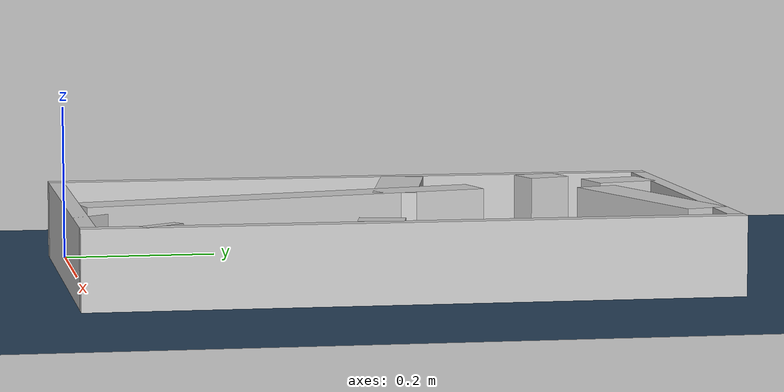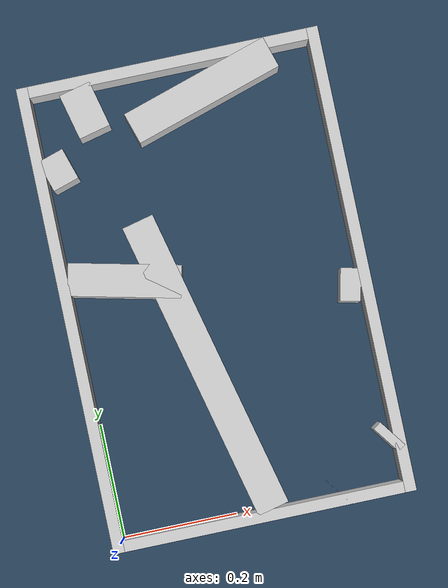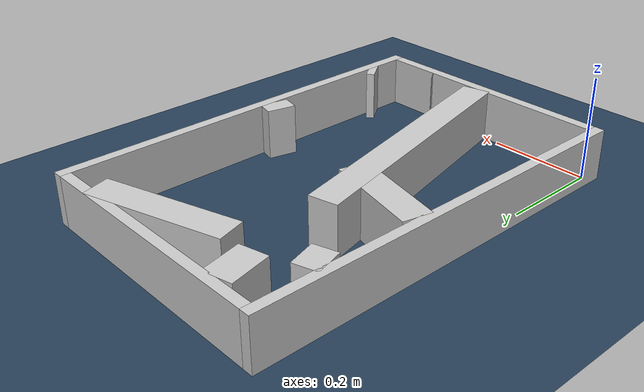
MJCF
<?xml version="1.0" ?>
<mujoco model="generated_real_template">
  <compiler angle="degree"/>
  <option timestep="0.002" integrator="implicitfast" iterations="100" cone="elliptic"/>
  <default>
    <geom density="1"/>
  </default>
  <asset>
    <texture builtin="gradient" height="3072" rgb1="0.3 0.5 0.7" rgb2="0 0 0" type="skybox" width="512"/>
    <texture builtin="checker" height="300" mark="edge" markrgb="0.8 0.8 0.8" name="groundplane" rgb1="0.2 0.3 0.4" rgb2="0.1 0.2 0.3" type="2d" width="300"/>
    <material name="groundplane" reflectance="0.2" texrepeat="5 5" texture="groundplane" texuniform="true"/>
  </asset>
  <worldbody>
    <light dir="0 0 -1" directional="true" pos="0 0 1.5"/>
    <geom name="floor" type="plane" condim="4" friction="0.5 0.005 0.001" material="groundplane" size="0 0 0.05"/>
    <body name="walls">
      <geom name="wall_boundary_left" type="box" condim="4" friction="1.0 0.005 0.0001" rgba="0.8 0.8 0.8 1" pos="-0.010000 0.387500 0.050000" euler="0 0 0.000000" size="0.010000 0.407500 0.050000"/>
      <geom name="wall_boundary_right" type="box" condim="4" friction="1.0 0.005 0.0001" rgba="0.8 0.8 0.8 1" pos="0.500000 0.387500 0.050000" euler="0 0 0.000000" size="0.010000 0.407500 0.050000"/>
      <geom name="wall_boundary_bottom" type="box" condim="4" friction="1.0 0.005 0.0001" rgba="0.8 0.8 0.8 1" pos="0.245000 -0.010000 0.050000" euler="0 0 0.000000" size="0.245000 0.010000 0.050000"/>
      <geom name="wall_boundary_top" type="box" condim="4" friction="1.0 0.005 0.0001" rgba="0.8 0.8 0.8 1" pos="0.245000 0.785000 0.050000" euler="0 0 0.000000" size="0.245000 0.010000 0.050000"/>
      <geom name="wall_inner_1_1" type="box" condim="4" friction="1.0 0.005 0.0001" rgba="0.8 0.8 0.8 1" pos="0.292070 0.727363 0.050000" euler="0 0 -162.768901" size="0.136432 0.028500 0.050000"/>
      <geom name="wall_inner_1_2" type="box" condim="4" friction="1.0 0.005 0.0001" rgba="0.8 0.8 0.8 1" pos="0.022814 0.643855 0.050000" euler="0 0 -162.768901" size="0.023886 0.028500 0.050000"/>
      <geom name="wall_inner_2_1" type="box" condim="4" friction="1.0 0.005 0.0001" rgba="0.8 0.8 0.8 1" pos="0.472720 0.347634 0.050000" euler="0 0 167.027273" size="0.017732 0.028500 0.050000"/>
      <geom name="wall_inner_2_2" type="box" condim="4" friction="1.0 0.005 0.0001" rgba="0.8 0.8 0.8 1" pos="0.095264 0.434588 0.050000" euler="0 0 167.027273" size="0.097759 0.028500 0.050000"/>
      <geom name="wall_inner_3_1" type="box" condim="4" friction="1.0 0.005 0.0001" rgba="0.8 0.8 0.8 1" pos="0.200665 0.264462 0.050000" euler="0 0 103.429672" size="0.271897 0.028500 0.050000"/>
      <geom name="wall_inner_3_2" type="box" condim="4" friction="1.0 0.005 0.0001" rgba="0.8 0.8 0.8 1" pos="0.088312 0.734990 0.050000" euler="0 0 103.429672" size="0.041135 0.028500 0.050000"/>
      <geom name="wall_inner_4_1" type="box" condim="4" friction="1.0 0.005 0.0001" rgba="0.8 0.8 0.8 1" pos="0.379705 0.003098 0.050000" euler="0 0 36.086087" size="0.000111 0.028500 0.050000"/>
      <geom name="wall_inner_4_2" type="box" condim="4" friction="1.0 0.005 0.0001" rgba="0.8 0.8 0.8 1" pos="0.483388 0.078667 0.050000" euler="0 0 36.086087" size="0.008182 0.028500 0.050000"/>
    </body>
  </worldbody>
</mujoco>
